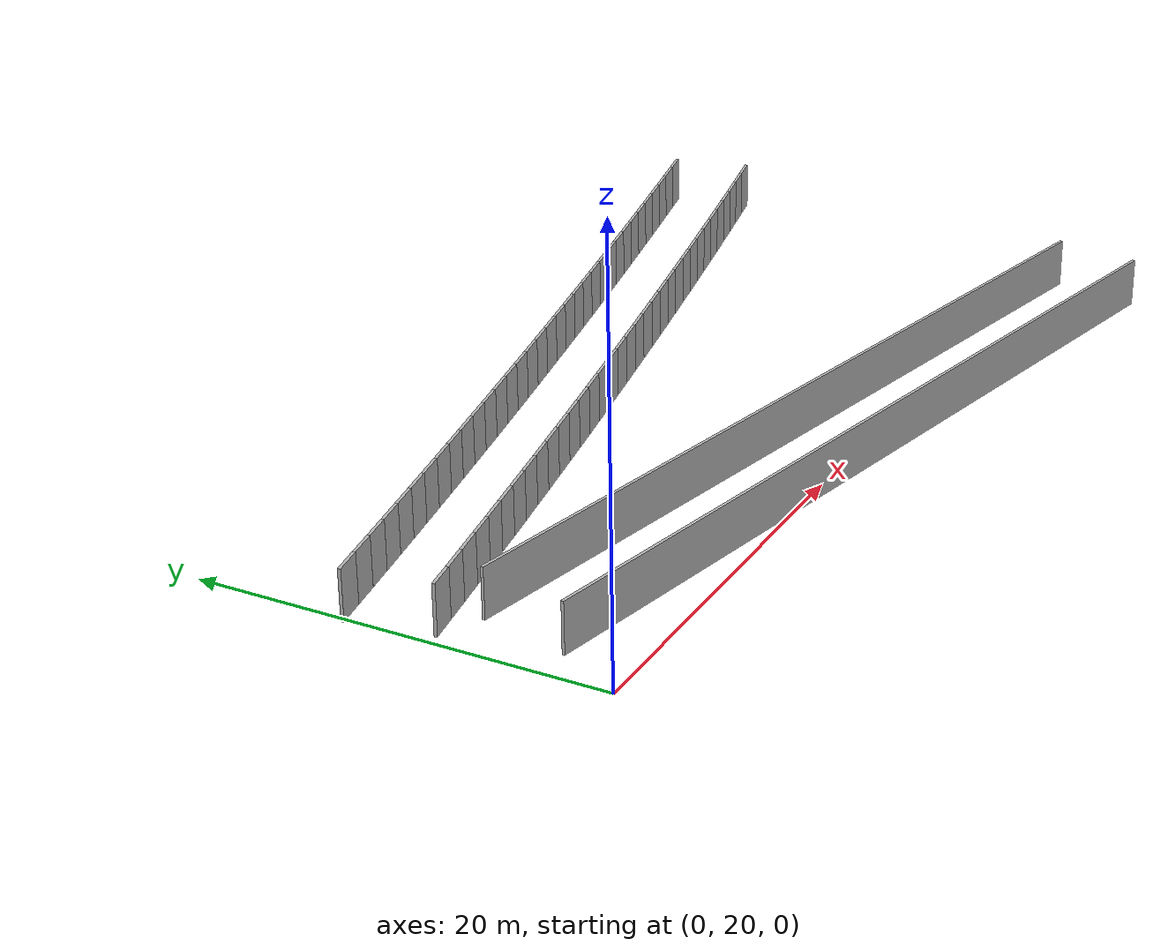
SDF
<?xml version="1.0" ?>
<sdf version="1.6">
  <model name="sps_2903">
    <pose frame="">0 0 0 0 -0 0</pose>
    <static>1</static>
    <self_collide>0</self_collide>
    <allow_auto_disable>0</allow_auto_disable>
    <link name="Wall3581">
      <kinematic>0</kinematic>
      <gravity>1</gravity>
      <self_collide>0</self_collide>
      <collision name="collision">
        <geometry>
          <box>
            <size>45.9351 0.15 2.5</size>
          </box>
        </geometry>
        <pose frame="">0 0 0 0 -0 0</pose>
      </collision>
      <visual name="visual">
        <geometry>
          <box>
            <size>45.9351 0.15 2.5</size>
          </box>
        </geometry>
        <pose frame="">0 0 0 0 -0 0</pose>
        <cast_shadows>1</cast_shadows>
        <transparency>0.0</transparency>
      </visual>
      <pose frame="">24.1661 18.5489 1.25 0 -0 2.93706</pose>
    </link>
    <link name="Wall3772">
      <kinematic>0</kinematic>
      <gravity>1</gravity>
      <self_collide>0</self_collide>
      <collision name="collision">
        <geometry>
          <box>
            <size>1.49666 0.15 2.5</size>
          </box>
        </geometry>
        <pose frame="">0 0 0 0 -0 0</pose>
      </collision>
      <visual name="visual">
        <geometry>
          <box>
            <size>1.49666 0.15 2.5</size>
          </box>
        </geometry>
        <pose frame="">0 0 0 0 -0 0</pose>
        <cast_shadows>1</cast_shadows>
        <transparency>0.0</transparency>
      </visual>
      <pose frame="">0.559348 32.7362 1.25 0 -0 0.170432</pose>
    </link>
    <link name="Wall3773">
      <kinematic>0</kinematic>
      <gravity>1</gravity>
      <self_collide>0</self_collide>
      <collision name="collision">
        <geometry>
          <box>
            <size>1.49651 0.15 2.5</size>
          </box>
        </geometry>
        <pose frame="">0 0 0 0 -0 0</pose>
      </collision>
      <visual name="visual">
        <geometry>
          <box>
            <size>1.49651 0.15 2.5</size>
          </box>
        </geometry>
        <pose frame="">0 0 0 0 -0 0</pose>
        <cast_shadows>1</cast_shadows>
        <transparency>0.0</transparency>
      </visual>
      <pose frame="">2.03405 32.9912 1.25 0 -0 0.172021</pose>
    </link>
    <link name="Wall3774">
      <kinematic>0</kinematic>
      <gravity>1</gravity>
      <self_collide>0</self_collide>
      <collision name="collision">
        <geometry>
          <box>
            <size>1.49651 0.15 2.5</size>
          </box>
        </geometry>
        <pose frame="">0 0 0 0 -0 0</pose>
      </collision>
      <visual name="visual">
        <geometry>
          <box>
            <size>1.49651 0.15 2.5</size>
          </box>
        </geometry>
        <pose frame="">0 0 0 0 -0 0</pose>
        <cast_shadows>1</cast_shadows>
        <transparency>0.0</transparency>
      </visual>
      <pose frame="">3.50826 33.2486 1.25 0 -0 0.173678</pose>
    </link>
    <link name="Wall3775">
      <kinematic>0</kinematic>
      <gravity>1</gravity>
      <self_collide>0</self_collide>
      <collision name="collision">
        <geometry>
          <box>
            <size>1.49647 0.15 2.5</size>
          </box>
        </geometry>
        <pose frame="">0 0 0 0 -0 0</pose>
      </collision>
      <visual name="visual">
        <geometry>
          <box>
            <size>1.49647 0.15 2.5</size>
          </box>
        </geometry>
        <pose frame="">0 0 0 0 -0 0</pose>
        <cast_shadows>1</cast_shadows>
        <transparency>0.0</transparency>
      </visual>
      <pose frame="">4.98205 33.5083 1.25 0 -0 0.175173</pose>
    </link>
    <link name="Wall3776">
      <kinematic>0</kinematic>
      <gravity>1</gravity>
      <self_collide>0</self_collide>
      <collision name="collision">
        <geometry>
          <box>
            <size>1.49635 0.15 2.5</size>
          </box>
        </geometry>
        <pose frame="">0 0 0 0 -0 0</pose>
      </collision>
      <visual name="visual">
        <geometry>
          <box>
            <size>1.49635 0.15 2.5</size>
          </box>
        </geometry>
        <pose frame="">0 0 0 0 -0 0</pose>
        <cast_shadows>1</cast_shadows>
        <transparency>0.0</transparency>
      </visual>
      <pose frame="">6.45534 33.7703 1.25 0 -0 0.176804</pose>
    </link>
    <link name="Wall3777">
      <kinematic>0</kinematic>
      <gravity>1</gravity>
      <self_collide>0</self_collide>
      <collision name="collision">
        <geometry>
          <box>
            <size>1.49654 0.15 2.5</size>
          </box>
        </geometry>
        <pose frame="">0 0 0 0 -0 0</pose>
      </collision>
      <visual name="visual">
        <geometry>
          <box>
            <size>1.49654 0.15 2.5</size>
          </box>
        </geometry>
        <pose frame="">0 0 0 0 -0 0</pose>
        <cast_shadows>1</cast_shadows>
        <transparency>0.0</transparency>
      </visual>
      <pose frame="">7.92824 34.0347 1.25 0 -0 0.178438</pose>
    </link>
    <link name="Wall3778">
      <kinematic>0</kinematic>
      <gravity>1</gravity>
      <self_collide>0</self_collide>
      <collision name="collision">
        <geometry>
          <box>
            <size>1.49657 0.15 2.5</size>
          </box>
        </geometry>
        <pose frame="">0 0 0 0 -0 0</pose>
      </collision>
      <visual name="visual">
        <geometry>
          <box>
            <size>1.49657 0.15 2.5</size>
          </box>
        </geometry>
        <pose frame="">0 0 0 0 -0 0</pose>
        <cast_shadows>1</cast_shadows>
        <transparency>0.0</transparency>
      </visual>
      <pose frame="">9.40084 34.3014 1.25 0 -0 0.179926</pose>
    </link>
    <link name="Wall3779">
      <kinematic>0</kinematic>
      <gravity>1</gravity>
      <self_collide>0</self_collide>
      <collision name="collision">
        <geometry>
          <box>
            <size>1.49658 0.15 2.5</size>
          </box>
        </geometry>
        <pose frame="">0 0 0 0 -0 0</pose>
      </collision>
      <visual name="visual">
        <geometry>
          <box>
            <size>1.49658 0.15 2.5</size>
          </box>
        </geometry>
        <pose frame="">0 0 0 0 -0 0</pose>
        <cast_shadows>1</cast_shadows>
        <transparency>0.0</transparency>
      </visual>
      <pose frame="">10.873 34.5704 1.25 0 -0 0.181542</pose>
    </link>
    <link name="Wall3780">
      <kinematic>0</kinematic>
      <gravity>1</gravity>
      <self_collide>0</self_collide>
      <collision name="collision">
        <geometry>
          <box>
            <size>1.49665 0.15 2.5</size>
          </box>
        </geometry>
        <pose frame="">0 0 0 0 -0 0</pose>
      </collision>
      <visual name="visual">
        <geometry>
          <box>
            <size>1.49665 0.15 2.5</size>
          </box>
        </geometry>
        <pose frame="">0 0 0 0 -0 0</pose>
        <cast_shadows>1</cast_shadows>
        <transparency>0.0</transparency>
      </visual>
      <pose frame="">12.3448 34.8418 1.25 0 -0 0.183151</pose>
    </link>
    <link name="Wall3781">
      <kinematic>0</kinematic>
      <gravity>1</gravity>
      <self_collide>0</self_collide>
      <collision name="collision">
        <geometry>
          <box>
            <size>1.49649 0.15 2.5</size>
          </box>
        </geometry>
        <pose frame="">0 0 0 0 -0 0</pose>
      </collision>
      <visual name="visual">
        <geometry>
          <box>
            <size>1.49649 0.15 2.5</size>
          </box>
        </geometry>
        <pose frame="">0 0 0 0 -0 0</pose>
        <cast_shadows>1</cast_shadows>
        <transparency>0.0</transparency>
      </visual>
      <pose frame="">13.8162 35.1156 1.25 0 -0 0.184789</pose>
    </link>
    <link name="Wall3782">
      <kinematic>0</kinematic>
      <gravity>1</gravity>
      <self_collide>0</self_collide>
      <collision name="collision">
        <geometry>
          <box>
            <size>1.49648 0.15 2.5</size>
          </box>
        </geometry>
        <pose frame="">0 0 0 0 -0 0</pose>
      </collision>
      <visual name="visual">
        <geometry>
          <box>
            <size>1.49648 0.15 2.5</size>
          </box>
        </geometry>
        <pose frame="">0 0 0 0 -0 0</pose>
        <cast_shadows>1</cast_shadows>
        <transparency>0.0</transparency>
      </visual>
      <pose frame="">15.2869 35.3917 1.25 0 -0 0.186325</pose>
    </link>
    <link name="Wall3783">
      <kinematic>0</kinematic>
      <gravity>1</gravity>
      <self_collide>0</self_collide>
      <collision name="collision">
        <geometry>
          <box>
            <size>1.49671 0.15 2.5</size>
          </box>
        </geometry>
        <pose frame="">0 0 0 0 -0 0</pose>
      </collision>
      <visual name="visual">
        <geometry>
          <box>
            <size>1.49671 0.15 2.5</size>
          </box>
        </geometry>
        <pose frame="">0 0 0 0 -0 0</pose>
        <cast_shadows>1</cast_shadows>
        <transparency>0.0</transparency>
      </visual>
      <pose frame="">16.7574 35.67 1.25 0 -0 0.18779</pose>
    </link>
    <link name="Wall3784">
      <kinematic>0</kinematic>
      <gravity>1</gravity>
      <self_collide>0</self_collide>
      <collision name="collision">
        <geometry>
          <box>
            <size>1.49638 0.15 2.5</size>
          </box>
        </geometry>
        <pose frame="">0 0 0 0 -0 0</pose>
      </collision>
      <visual name="visual">
        <geometry>
          <box>
            <size>1.49638 0.15 2.5</size>
          </box>
        </geometry>
        <pose frame="">0 0 0 0 -0 0</pose>
        <cast_shadows>1</cast_shadows>
        <transparency>0.0</transparency>
      </visual>
      <pose frame="">18.2274 35.9506 1.25 0 -0 0.189452</pose>
    </link>
    <link name="Wall3785">
      <kinematic>0</kinematic>
      <gravity>1</gravity>
      <self_collide>0</self_collide>
      <collision name="collision">
        <geometry>
          <box>
            <size>1.49665 0.15 2.5</size>
          </box>
        </geometry>
        <pose frame="">0 0 0 0 -0 0</pose>
      </collision>
      <visual name="visual">
        <geometry>
          <box>
            <size>1.49665 0.15 2.5</size>
          </box>
        </geometry>
        <pose frame="">0 0 0 0 -0 0</pose>
        <cast_shadows>1</cast_shadows>
        <transparency>0.0</transparency>
      </visual>
      <pose frame="">19.697 36.2336 1.25 0 -0 0.191037</pose>
    </link>
    <link name="Wall3786">
      <kinematic>0</kinematic>
      <gravity>1</gravity>
      <self_collide>0</self_collide>
      <collision name="collision">
        <geometry>
          <box>
            <size>1.49652 0.15 2.5</size>
          </box>
        </geometry>
        <pose frame="">0 0 0 0 -0 0</pose>
      </collision>
      <visual name="visual">
        <geometry>
          <box>
            <size>1.49652 0.15 2.5</size>
          </box>
        </geometry>
        <pose frame="">0 0 0 0 -0 0</pose>
        <cast_shadows>1</cast_shadows>
        <transparency>0.0</transparency>
      </visual>
      <pose frame="">21.1661 36.519 1.25 0 -0 0.192716</pose>
    </link>
    <link name="Wall3787">
      <kinematic>0</kinematic>
      <gravity>1</gravity>
      <self_collide>0</self_collide>
      <collision name="collision">
        <geometry>
          <box>
            <size>1.49651 0.15 2.5</size>
          </box>
        </geometry>
        <pose frame="">0 0 0 0 -0 0</pose>
      </collision>
      <visual name="visual">
        <geometry>
          <box>
            <size>1.49651 0.15 2.5</size>
          </box>
        </geometry>
        <pose frame="">0 0 0 0 -0 0</pose>
        <cast_shadows>1</cast_shadows>
        <transparency>0.0</transparency>
      </visual>
      <pose frame="">22.6347 36.8067 1.25 0 -0 0.194172</pose>
    </link>
    <link name="Wall3788">
      <kinematic>0</kinematic>
      <gravity>1</gravity>
      <self_collide>0</self_collide>
      <collision name="collision">
        <geometry>
          <box>
            <size>1.49638 0.15 2.5</size>
          </box>
        </geometry>
        <pose frame="">0 0 0 0 -0 0</pose>
      </collision>
      <visual name="visual">
        <geometry>
          <box>
            <size>1.49638 0.15 2.5</size>
          </box>
        </geometry>
        <pose frame="">0 0 0 0 -0 0</pose>
        <cast_shadows>1</cast_shadows>
        <transparency>0.0</transparency>
      </visual>
      <pose frame="">24.1027 37.0967 1.25 0 -0 0.195852</pose>
    </link>
    <link name="Wall3789">
      <kinematic>0</kinematic>
      <gravity>1</gravity>
      <self_collide>0</self_collide>
      <collision name="collision">
        <geometry>
          <box>
            <size>1.49646 0.15 2.5</size>
          </box>
        </geometry>
        <pose frame="">0 0 0 0 -0 0</pose>
      </collision>
      <visual name="visual">
        <geometry>
          <box>
            <size>1.49646 0.15 2.5</size>
          </box>
        </geometry>
        <pose frame="">0 0 0 0 -0 0</pose>
        <cast_shadows>1</cast_shadows>
        <transparency>0.0</transparency>
      </visual>
      <pose frame="">25.5703 37.389 1.25 0 -0 0.19738</pose>
    </link>
    <link name="Wall3790">
      <kinematic>0</kinematic>
      <gravity>1</gravity>
      <self_collide>0</self_collide>
      <collision name="collision">
        <geometry>
          <box>
            <size>1.49656 0.15 2.5</size>
          </box>
        </geometry>
        <pose frame="">0 0 0 0 -0 0</pose>
      </collision>
      <visual name="visual">
        <geometry>
          <box>
            <size>1.49656 0.15 2.5</size>
          </box>
        </geometry>
        <pose frame="">0 0 0 0 -0 0</pose>
        <cast_shadows>1</cast_shadows>
        <transparency>0.0</transparency>
      </visual>
      <pose frame="">27.0376 37.6836 1.25 0 -0 0.198947</pose>
    </link>
    <link name="Wall3791">
      <kinematic>0</kinematic>
      <gravity>1</gravity>
      <self_collide>0</self_collide>
      <collision name="collision">
        <geometry>
          <box>
            <size>1.49652 0.15 2.5</size>
          </box>
        </geometry>
        <pose frame="">0 0 0 0 -0 0</pose>
      </collision>
      <visual name="visual">
        <geometry>
          <box>
            <size>1.49652 0.15 2.5</size>
          </box>
        </geometry>
        <pose frame="">0 0 0 0 -0 0</pose>
        <cast_shadows>1</cast_shadows>
        <transparency>0.0</transparency>
      </visual>
      <pose frame="">28.5044 37.9805 1.25 0 -0 0.200451</pose>
    </link>
    <link name="Wall3792">
      <kinematic>0</kinematic>
      <gravity>1</gravity>
      <self_collide>0</self_collide>
      <collision name="collision">
        <geometry>
          <box>
            <size>1.4965 0.15 2.5</size>
          </box>
        </geometry>
        <pose frame="">0 0 0 0 -0 0</pose>
      </collision>
      <visual name="visual">
        <geometry>
          <box>
            <size>1.4965 0.15 2.5</size>
          </box>
        </geometry>
        <pose frame="">0 0 0 0 -0 0</pose>
        <cast_shadows>1</cast_shadows>
        <transparency>0.0</transparency>
      </visual>
      <pose frame="">29.9706 38.2798 1.25 0 -0 0.202243</pose>
    </link>
    <link name="Wall3793">
      <kinematic>0</kinematic>
      <gravity>1</gravity>
      <self_collide>0</self_collide>
      <collision name="collision">
        <geometry>
          <box>
            <size>1.49659 0.15 2.5</size>
          </box>
        </geometry>
        <pose frame="">0 0 0 0 -0 0</pose>
      </collision>
      <visual name="visual">
        <geometry>
          <box>
            <size>1.49659 0.15 2.5</size>
          </box>
        </geometry>
        <pose frame="">0 0 0 0 -0 0</pose>
        <cast_shadows>1</cast_shadows>
        <transparency>0.0</transparency>
      </visual>
      <pose frame="">31.4365 38.5815 1.25 0 -0 0.20373</pose>
    </link>
    <link name="Wall3794">
      <kinematic>0</kinematic>
      <gravity>1</gravity>
      <self_collide>0</self_collide>
      <collision name="collision">
        <geometry>
          <box>
            <size>1.49663 0.15 2.5</size>
          </box>
        </geometry>
        <pose frame="">0 0 0 0 -0 0</pose>
      </collision>
      <visual name="visual">
        <geometry>
          <box>
            <size>1.49663 0.15 2.5</size>
          </box>
        </geometry>
        <pose frame="">0 0 0 0 -0 0</pose>
        <cast_shadows>1</cast_shadows>
        <transparency>0.0</transparency>
      </visual>
      <pose frame="">32.9019 38.8854 1.25 0 -0 0.205266</pose>
    </link>
    <link name="Wall3795">
      <kinematic>0</kinematic>
      <gravity>1</gravity>
      <self_collide>0</self_collide>
      <collision name="collision">
        <geometry>
          <box>
            <size>1.49654 0.15 2.5</size>
          </box>
        </geometry>
        <pose frame="">0 0 0 0 -0 0</pose>
      </collision>
      <visual name="visual">
        <geometry>
          <box>
            <size>1.49654 0.15 2.5</size>
          </box>
        </geometry>
        <pose frame="">0 0 0 0 -0 0</pose>
        <cast_shadows>1</cast_shadows>
        <transparency>0.0</transparency>
      </visual>
      <pose frame="">34.3668 39.1917 1.25 0 -0 0.206986</pose>
    </link>
    <link name="Wall3796">
      <kinematic>0</kinematic>
      <gravity>1</gravity>
      <self_collide>0</self_collide>
      <collision name="collision">
        <geometry>
          <box>
            <size>1.49655 0.15 2.5</size>
          </box>
        </geometry>
        <pose frame="">0 0 0 0 -0 0</pose>
      </collision>
      <visual name="visual">
        <geometry>
          <box>
            <size>1.49655 0.15 2.5</size>
          </box>
        </geometry>
        <pose frame="">0 0 0 0 -0 0</pose>
        <cast_shadows>1</cast_shadows>
        <transparency>0.0</transparency>
      </visual>
      <pose frame="">35.8312 39.5003 1.25 0 -0 0.208402</pose>
    </link>
    <link name="Wall3797">
      <kinematic>0</kinematic>
      <gravity>1</gravity>
      <self_collide>0</self_collide>
      <collision name="collision">
        <geometry>
          <box>
            <size>1.49673 0.15 2.5</size>
          </box>
        </geometry>
        <pose frame="">0 0 0 0 -0 0</pose>
      </collision>
      <visual name="visual">
        <geometry>
          <box>
            <size>1.49673 0.15 2.5</size>
          </box>
        </geometry>
        <pose frame="">0 0 0 0 -0 0</pose>
        <cast_shadows>1</cast_shadows>
        <transparency>0.0</transparency>
      </visual>
      <pose frame="">37.2952 39.8112 1.25 0 -0 0.210128</pose>
    </link>
    <link name="Wall3798">
      <kinematic>0</kinematic>
      <gravity>1</gravity>
      <self_collide>0</self_collide>
      <collision name="collision">
        <geometry>
          <box>
            <size>1.49641 0.15 2.5</size>
          </box>
        </geometry>
        <pose frame="">0 0 0 0 -0 0</pose>
      </collision>
      <visual name="visual">
        <geometry>
          <box>
            <size>1.49641 0.15 2.5</size>
          </box>
        </geometry>
        <pose frame="">0 0 0 0 -0 0</pose>
        <cast_shadows>1</cast_shadows>
        <transparency>0.0</transparency>
      </visual>
      <pose frame="">38.7586 40.1245 1.25 0 -0 0.211674</pose>
    </link>
    <link name="Wall3799">
      <kinematic>0</kinematic>
      <gravity>1</gravity>
      <self_collide>0</self_collide>
      <collision name="collision">
        <geometry>
          <box>
            <size>1.49664 0.15 2.5</size>
          </box>
        </geometry>
        <pose frame="">0 0 0 0 -0 0</pose>
      </collision>
      <visual name="visual">
        <geometry>
          <box>
            <size>1.49664 0.15 2.5</size>
          </box>
        </geometry>
        <pose frame="">0 0 0 0 -0 0</pose>
        <cast_shadows>1</cast_shadows>
        <transparency>0.0</transparency>
      </visual>
      <pose frame="">40.2215 40.44 1.25 0 -0 0.213144</pose>
    </link>
    <link name="Wall3800">
      <kinematic>0</kinematic>
      <gravity>1</gravity>
      <self_collide>0</self_collide>
      <collision name="collision">
        <geometry>
          <box>
            <size>1.49648 0.15 2.5</size>
          </box>
        </geometry>
        <pose frame="">0 0 0 0 -0 0</pose>
      </collision>
      <visual name="visual">
        <geometry>
          <box>
            <size>1.49648 0.15 2.5</size>
          </box>
        </geometry>
        <pose frame="">0 0 0 0 -0 0</pose>
        <cast_shadows>1</cast_shadows>
        <transparency>0.0</transparency>
      </visual>
      <pose frame="">41.6839 40.7579 1.25 0 -0 0.214962</pose>
    </link>
    <link name="Wall3801">
      <kinematic>0</kinematic>
      <gravity>1</gravity>
      <self_collide>0</self_collide>
      <collision name="collision">
        <geometry>
          <box>
            <size>1.49643 0.15 2.5</size>
          </box>
        </geometry>
        <pose frame="">0 0 0 0 -0 0</pose>
      </collision>
      <visual name="visual">
        <geometry>
          <box>
            <size>1.49643 0.15 2.5</size>
          </box>
        </geometry>
        <pose frame="">0 0 0 0 -0 0</pose>
        <cast_shadows>1</cast_shadows>
        <transparency>0.0</transparency>
      </visual>
      <pose frame="">43.1457 41.0781 1.25 0 -0 0.216346</pose>
    </link>
    <link name="Wall3802">
      <kinematic>0</kinematic>
      <gravity>1</gravity>
      <self_collide>0</self_collide>
      <collision name="collision">
        <geometry>
          <box>
            <size>1.49663 0.15 2.5</size>
          </box>
        </geometry>
        <pose frame="">0 0 0 0 -0 0</pose>
      </collision>
      <visual name="visual">
        <geometry>
          <box>
            <size>1.49663 0.15 2.5</size>
          </box>
        </geometry>
        <pose frame="">0 0 0 0 -0 0</pose>
        <cast_shadows>1</cast_shadows>
        <transparency>0.0</transparency>
      </visual>
      <pose frame="">44.607 41.4005 1.25 0 -0 0.217904</pose>
    </link>
    <link name="Wall3803">
      <kinematic>0</kinematic>
      <gravity>1</gravity>
      <self_collide>0</self_collide>
      <collision name="collision">
        <geometry>
          <box>
            <size>1.49647 0.15 2.5</size>
          </box>
        </geometry>
        <pose frame="">0 0 0 0 -0 0</pose>
      </collision>
      <visual name="visual">
        <geometry>
          <box>
            <size>1.49647 0.15 2.5</size>
          </box>
        </geometry>
        <pose frame="">0 0 0 0 -0 0</pose>
        <cast_shadows>1</cast_shadows>
        <transparency>0.0</transparency>
      </visual>
      <pose frame="">46.068 41.7252 1.25 0 -0 0.219474</pose>
    </link>
    <link name="Wall3804">
      <kinematic>0</kinematic>
      <gravity>1</gravity>
      <self_collide>0</self_collide>
      <collision name="collision">
        <geometry>
          <box>
            <size>1.49651 0.15 2.5</size>
          </box>
        </geometry>
        <pose frame="">0 0 0 0 -0 0</pose>
      </collision>
      <visual name="visual">
        <geometry>
          <box>
            <size>1.49651 0.15 2.5</size>
          </box>
        </geometry>
        <pose frame="">0 0 0 0 -0 0</pose>
        <cast_shadows>1</cast_shadows>
        <transparency>0.0</transparency>
      </visual>
      <pose frame="">47.5283 42.0523 1.25 0 -0 0.221266</pose>
    </link>
    <link name="Wall3805">
      <kinematic>0</kinematic>
      <gravity>1</gravity>
      <self_collide>0</self_collide>
      <collision name="collision">
        <geometry>
          <box>
            <size>1.49638 0.15 2.5</size>
          </box>
        </geometry>
        <pose frame="">0 0 0 0 -0 0</pose>
      </collision>
      <visual name="visual">
        <geometry>
          <box>
            <size>1.49638 0.15 2.5</size>
          </box>
        </geometry>
        <pose frame="">0 0 0 0 -0 0</pose>
        <cast_shadows>1</cast_shadows>
        <transparency>0.0</transparency>
      </visual>
      <pose frame="">48.988 42.3818 1.25 0 -0 0.222748</pose>
    </link>
    <link name="Wall7356">
      <kinematic>0</kinematic>
      <gravity>1</gravity>
      <self_collide>0</self_collide>
      <collision name="collision">
        <geometry>
          <box>
            <size>45.8889 0.15 2.5</size>
          </box>
        </geometry>
        <pose frame="">0 0 0 0 -0 0</pose>
      </collision>
      <visual name="visual">
        <geometry>
          <box>
            <size>45.8889 0.15 2.5</size>
          </box>
        </geometry>
        <pose frame="">0 0 0 0 -0 0</pose>
        <cast_shadows>1</cast_shadows>
        <transparency>0.0</transparency>
      </visual>
      <pose frame="">25.0788 22.8531 1.25 0 -0 2.93706</pose>
    </link>
    <link name="Wall7547">
      <kinematic>0</kinematic>
      <gravity>1</gravity>
      <self_collide>0</self_collide>
      <collision name="collision">
        <geometry>
          <box>
            <size>1.5032 0.15 2.5</size>
          </box>
        </geometry>
        <pose frame="">0 0 0 0 -0 0</pose>
      </collision>
      <visual name="visual">
        <geometry>
          <box>
            <size>1.5032 0.15 2.5</size>
          </box>
        </geometry>
        <pose frame="">0 0 0 0 -0 0</pose>
        <cast_shadows>1</cast_shadows>
        <transparency>0.0</transparency>
      </visual>
      <pose frame="">1.26455 28.6563 1.25 0 -0 0.170342</pose>
    </link>
    <link name="Wall7548">
      <kinematic>0</kinematic>
      <gravity>1</gravity>
      <self_collide>0</self_collide>
      <collision name="collision">
        <geometry>
          <box>
            <size>1.50298 0.15 2.5</size>
          </box>
        </geometry>
        <pose frame="">0 0 0 0 -0 0</pose>
      </collision>
      <visual name="visual">
        <geometry>
          <box>
            <size>1.50298 0.15 2.5</size>
          </box>
        </geometry>
        <pose frame="">0 0 0 0 -0 0</pose>
        <cast_shadows>1</cast_shadows>
        <transparency>0.0</transparency>
      </visual>
      <pose frame="">2.74566 28.9124 1.25 0 -0 0.172099</pose>
    </link>
    <link name="Wall7549">
      <kinematic>0</kinematic>
      <gravity>1</gravity>
      <self_collide>0</self_collide>
      <collision name="collision">
        <geometry>
          <box>
            <size>1.50317 0.15 2.5</size>
          </box>
        </geometry>
        <pose frame="">0 0 0 0 -0 0</pose>
      </collision>
      <visual name="visual">
        <geometry>
          <box>
            <size>1.50317 0.15 2.5</size>
          </box>
        </geometry>
        <pose frame="">0 0 0 0 -0 0</pose>
        <cast_shadows>1</cast_shadows>
        <transparency>0.0</transparency>
      </visual>
      <pose frame="">4.22634 29.1709 1.25 0 -0 0.17356</pose>
    </link>
    <link name="Wall7550">
      <kinematic>0</kinematic>
      <gravity>1</gravity>
      <self_collide>0</self_collide>
      <collision name="collision">
        <geometry>
          <box>
            <size>1.50309 0.15 2.5</size>
          </box>
        </geometry>
        <pose frame="">0 0 0 0 -0 0</pose>
      </collision>
      <visual name="visual">
        <geometry>
          <box>
            <size>1.50309 0.15 2.5</size>
          </box>
        </geometry>
        <pose frame="">0 0 0 0 -0 0</pose>
        <cast_shadows>1</cast_shadows>
        <transparency>0.0</transparency>
      </visual>
      <pose frame="">5.70666 29.4318 1.25 0 -0 0.175343</pose>
    </link>
    <link name="Wall7551">
      <kinematic>0</kinematic>
      <gravity>1</gravity>
      <self_collide>0</self_collide>
      <collision name="collision">
        <geometry>
          <box>
            <size>1.50299 0.15 2.5</size>
          </box>
        </geometry>
        <pose frame="">0 0 0 0 -0 0</pose>
      </collision>
      <visual name="visual">
        <geometry>
          <box>
            <size>1.50299 0.15 2.5</size>
          </box>
        </geometry>
        <pose frame="">0 0 0 0 -0 0</pose>
        <cast_shadows>1</cast_shadows>
        <transparency>0.0</transparency>
      </visual>
      <pose frame="">7.18645 29.6951 1.25 0 -0 0.176839</pose>
    </link>
    <link name="Wall7552">
      <kinematic>0</kinematic>
      <gravity>1</gravity>
      <self_collide>0</self_collide>
      <collision name="collision">
        <geometry>
          <box>
            <size>1.50308 0.15 2.5</size>
          </box>
        </geometry>
        <pose frame="">0 0 0 0 -0 0</pose>
      </collision>
      <visual name="visual">
        <geometry>
          <box>
            <size>1.50308 0.15 2.5</size>
          </box>
        </geometry>
        <pose frame="">0 0 0 0 -0 0</pose>
        <cast_shadows>1</cast_shadows>
        <transparency>0.0</transparency>
      </visual>
      <pose frame="">8.66585 29.9606 1.25 0 -0 0.178314</pose>
    </link>
    <link name="Wall7553">
      <kinematic>0</kinematic>
      <gravity>1</gravity>
      <self_collide>0</self_collide>
      <collision name="collision">
        <geometry>
          <box>
            <size>1.50302 0.15 2.5</size>
          </box>
        </geometry>
        <pose frame="">0 0 0 0 -0 0</pose>
      </collision>
      <visual name="visual">
        <geometry>
          <box>
            <size>1.50302 0.15 2.5</size>
          </box>
        </geometry>
        <pose frame="">0 0 0 0 -0 0</pose>
        <cast_shadows>1</cast_shadows>
        <transparency>0.0</transparency>
      </visual>
      <pose frame="">10.1449 30.2284 1.25 0 -0 0.17993</pose>
    </link>
    <link name="Wall7554">
      <kinematic>0</kinematic>
      <gravity>1</gravity>
      <self_collide>0</self_collide>
      <collision name="collision">
        <geometry>
          <box>
            <size>1.50334 0.15 2.5</size>
          </box>
        </geometry>
        <pose frame="">0 0 0 0 -0 0</pose>
      </collision>
      <visual name="visual">
        <geometry>
          <box>
            <size>1.50334 0.15 2.5</size>
          </box>
        </geometry>
        <pose frame="">0 0 0 0 -0 0</pose>
        <cast_shadows>1</cast_shadows>
        <transparency>0.0</transparency>
      </visual>
      <pose frame="">11.6236 30.4986 1.25 0 -0 0.181542</pose>
    </link>
    <link name="Wall7555">
      <kinematic>0</kinematic>
      <gravity>1</gravity>
      <self_collide>0</self_collide>
      <collision name="collision">
        <geometry>
          <box>
            <size>1.50293 0.15 2.5</size>
          </box>
        </geometry>
        <pose frame="">0 0 0 0 -0 0</pose>
      </collision>
      <visual name="visual">
        <geometry>
          <box>
            <size>1.50293 0.15 2.5</size>
          </box>
        </geometry>
        <pose frame="">0 0 0 0 -0 0</pose>
        <cast_shadows>1</cast_shadows>
        <transparency>0.0</transparency>
      </visual>
      <pose frame="">13.1018 30.7712 1.25 0 -0 0.183203</pose>
    </link>
    <link name="Wall7556">
      <kinematic>0</kinematic>
      <gravity>1</gravity>
      <self_collide>0</self_collide>
      <collision name="collision">
        <geometry>
          <box>
            <size>1.50298 0.15 2.5</size>
          </box>
        </geometry>
        <pose frame="">0 0 0 0 -0 0</pose>
      </collision>
      <visual name="visual">
        <geometry>
          <box>
            <size>1.50298 0.15 2.5</size>
          </box>
        </geometry>
        <pose frame="">0 0 0 0 -0 0</pose>
        <cast_shadows>1</cast_shadows>
        <transparency>0.0</transparency>
      </visual>
      <pose frame="">14.5794 31.0461 1.25 0 -0 0.184684</pose>
    </link>
    <link name="Wall7557">
      <kinematic>0</kinematic>
      <gravity>1</gravity>
      <self_collide>0</self_collide>
      <collision name="collision">
        <geometry>
          <box>
            <size>1.503 0.15 2.5</size>
          </box>
        </geometry>
        <pose frame="">0 0 0 0 -0 0</pose>
      </collision>
      <visual name="visual">
        <geometry>
          <box>
            <size>1.503 0.15 2.5</size>
          </box>
        </geometry>
        <pose frame="">0 0 0 0 -0 0</pose>
        <cast_shadows>1</cast_shadows>
        <transparency>0.0</transparency>
      </visual>
      <pose frame="">16.0566 31.3233 1.25 0 -0 0.186293</pose>
    </link>
    <link name="Wall7558">
      <kinematic>0</kinematic>
      <gravity>1</gravity>
      <self_collide>0</self_collide>
      <collision name="collision">
        <geometry>
          <box>
            <size>1.50327 0.15 2.5</size>
          </box>
        </geometry>
        <pose frame="">0 0 0 0 -0 0</pose>
      </collision>
      <visual name="visual">
        <geometry>
          <box>
            <size>1.50327 0.15 2.5</size>
          </box>
        </geometry>
        <pose frame="">0 0 0 0 -0 0</pose>
        <cast_shadows>1</cast_shadows>
        <transparency>0.0</transparency>
      </visual>
      <pose frame="">17.5335 31.6029 1.25 0 -0 0.187912</pose>
    </link>
    <link name="Wall7559">
      <kinematic>0</kinematic>
      <gravity>1</gravity>
      <self_collide>0</self_collide>
      <collision name="collision">
        <geometry>
          <box>
            <size>1.50312 0.15 2.5</size>
          </box>
        </geometry>
        <pose frame="">0 0 0 0 -0 0</pose>
      </collision>
      <visual name="visual">
        <geometry>
          <box>
            <size>1.50312 0.15 2.5</size>
          </box>
        </geometry>
        <pose frame="">0 0 0 0 -0 0</pose>
        <cast_shadows>1</cast_shadows>
        <transparency>0.0</transparency>
      </visual>
      <pose frame="">19.01 31.8849 1.25 0 -0 0.189544</pose>
    </link>
    <link name="Wall7560">
      <kinematic>0</kinematic>
      <gravity>1</gravity>
      <self_collide>0</self_collide>
      <collision name="collision">
        <geometry>
          <box>
            <size>1.50311 0.15 2.5</size>
          </box>
        </geometry>
        <pose frame="">0 0 0 0 -0 0</pose>
      </collision>
      <visual name="visual">
        <geometry>
          <box>
            <size>1.50311 0.15 2.5</size>
          </box>
        </geometry>
        <pose frame="">0 0 0 0 -0 0</pose>
        <cast_shadows>1</cast_shadows>
        <transparency>0.0</transparency>
      </visual>
      <pose frame="">20.486 32.1692 1.25 0 -0 0.191033</pose>
    </link>
    <link name="Wall7561">
      <kinematic>0</kinematic>
      <gravity>1</gravity>
      <self_collide>0</self_collide>
      <collision name="collision">
        <geometry>
          <box>
            <size>1.50303 0.15 2.5</size>
          </box>
        </geometry>
        <pose frame="">0 0 0 0 -0 0</pose>
      </collision>
      <visual name="visual">
        <geometry>
          <box>
            <size>1.50303 0.15 2.5</size>
          </box>
        </geometry>
        <pose frame="">0 0 0 0 -0 0</pose>
        <cast_shadows>1</cast_shadows>
        <transparency>0.0</transparency>
      </visual>
      <pose frame="">21.9614 32.4558 1.25 0 -0 0.192657</pose>
    </link>
    <link name="Wall7562">
      <kinematic>0</kinematic>
      <gravity>1</gravity>
      <self_collide>0</self_collide>
      <collision name="collision">
        <geometry>
          <box>
            <size>1.50303 0.15 2.5</size>
          </box>
        </geometry>
        <pose frame="">0 0 0 0 -0 0</pose>
      </collision>
      <visual name="visual">
        <geometry>
          <box>
            <size>1.50303 0.15 2.5</size>
          </box>
        </geometry>
        <pose frame="">0 0 0 0 -0 0</pose>
        <cast_shadows>1</cast_shadows>
        <transparency>0.0</transparency>
      </visual>
      <pose frame="">23.4365 32.7447 1.25 0 -0 0.194146</pose>
    </link>
    <link name="Wall7563">
      <kinematic>0</kinematic>
      <gravity>1</gravity>
      <self_collide>0</self_collide>
      <collision name="collision">
        <geometry>
          <box>
            <size>1.50318 0.15 2.5</size>
          </box>
        </geometry>
        <pose frame="">0 0 0 0 -0 0</pose>
      </collision>
      <visual name="visual">
        <geometry>
          <box>
            <size>1.50318 0.15 2.5</size>
          </box>
        </geometry>
        <pose frame="">0 0 0 0 -0 0</pose>
        <cast_shadows>1</cast_shadows>
        <transparency>0.0</transparency>
      </visual>
      <pose frame="">24.9111 33.036 1.25 0 -0 0.195906</pose>
    </link>
    <link name="Wall7564">
      <kinematic>0</kinematic>
      <gravity>1</gravity>
      <self_collide>0</self_collide>
      <collision name="collision">
        <geometry>
          <box>
            <size>1.50315 0.15 2.5</size>
          </box>
        </geometry>
        <pose frame="">0 0 0 0 -0 0</pose>
      </collision>
      <visual name="visual">
        <geometry>
          <box>
            <size>1.50315 0.15 2.5</size>
          </box>
        </geometry>
        <pose frame="">0 0 0 0 -0 0</pose>
        <cast_shadows>1</cast_shadows>
        <transparency>0.0</transparency>
      </visual>
      <pose frame="">26.3853 33.3296 1.25 0 -0 0.197276</pose>
    </link>
    <link name="Wall7565">
      <kinematic>0</kinematic>
      <gravity>1</gravity>
      <self_collide>0</self_collide>
      <collision name="collision">
        <geometry>
          <box>
            <size>1.50302 0.15 2.5</size>
          </box>
        </geometry>
        <pose frame="">0 0 0 0 -0 0</pose>
      </collision>
      <visual name="visual">
        <geometry>
          <box>
            <size>1.50302 0.15 2.5</size>
          </box>
        </geometry>
        <pose frame="">0 0 0 0 -0 0</pose>
        <cast_shadows>1</cast_shadows>
        <transparency>0.0</transparency>
      </visual>
      <pose frame="">27.859 33.6254 1.25 0 -0 0.198909</pose>
    </link>
    <link name="Wall7566">
      <kinematic>0</kinematic>
      <gravity>1</gravity>
      <self_collide>0</self_collide>
      <collision name="collision">
        <geometry>
          <box>
            <size>1.50309 0.15 2.5</size>
          </box>
        </geometry>
        <pose frame="">0 0 0 0 -0 0</pose>
      </collision>
      <visual name="visual">
        <geometry>
          <box>
            <size>1.50309 0.15 2.5</size>
          </box>
        </geometry>
        <pose frame="">0 0 0 0 -0 0</pose>
        <cast_shadows>1</cast_shadows>
        <transparency>0.0</transparency>
      </visual>
      <pose frame="">29.3321 33.9236 1.25 0 -0 0.200557</pose>
    </link>
    <link name="Wall7567">
      <kinematic>0</kinematic>
      <gravity>1</gravity>
      <self_collide>0</self_collide>
      <collision name="collision">
        <geometry>
          <box>
            <size>1.50302 0.15 2.5</size>
          </box>
        </geometry>
        <pose frame="">0 0 0 0 -0 0</pose>
      </collision>
      <visual name="visual">
        <geometry>
          <box>
            <size>1.50302 0.15 2.5</size>
          </box>
        </geometry>
        <pose frame="">0 0 0 0 -0 0</pose>
        <cast_shadows>1</cast_shadows>
        <transparency>0.0</transparency>
      </visual>
      <pose frame="">30.8048 34.2242 1.25 0 -0 0.202142</pose>
    </link>
    <link name="Wall7568">
      <kinematic>0</kinematic>
      <gravity>1</gravity>
      <self_collide>0</self_collide>
      <collision name="collision">
        <geometry>
          <box>
            <size>1.50315 0.15 2.5</size>
          </box>
        </geometry>
        <pose frame="">0 0 0 0 -0 0</pose>
      </collision>
      <visual name="visual">
        <geometry>
          <box>
            <size>1.50315 0.15 2.5</size>
          </box>
        </geometry>
        <pose frame="">0 0 0 0 -0 0</pose>
        <cast_shadows>1</cast_shadows>
        <transparency>0.0</transparency>
      </visual>
      <pose frame="">32.2771 34.5272 1.25 0 -0 0.203782</pose>
    </link>
    <link name="Wall7569">
      <kinematic>0</kinematic>
      <gravity>1</gravity>
      <self_collide>0</self_collide>
      <collision name="collision">
        <geometry>
          <box>
            <size>1.50317 0.15 2.5</size>
          </box>
        </geometry>
        <pose frame="">0 0 0 0 -0 0</pose>
      </collision>
      <visual name="visual">
        <geometry>
          <box>
            <size>1.50317 0.15 2.5</size>
          </box>
        </geometry>
        <pose frame="">0 0 0 0 -0 0</pose>
        <cast_shadows>1</cast_shadows>
        <transparency>0.0</transparency>
      </visual>
      <pose frame="">33.7489 34.8326 1.25 0 -0 0.205438</pose>
    </link>
    <link name="Wall7570">
      <kinematic>0</kinematic>
      <gravity>1</gravity>
      <self_collide>0</self_collide>
      <collision name="collision">
        <geometry>
          <box>
            <size>1.50307 0.15 2.5</size>
          </box>
        </geometry>
        <pose frame="">0 0 0 0 -0 0</pose>
      </collision>
      <visual name="visual">
        <geometry>
          <box>
            <size>1.50307 0.15 2.5</size>
          </box>
        </geometry>
        <pose frame="">0 0 0 0 -0 0</pose>
        <cast_shadows>1</cast_shadows>
        <transparency>0.0</transparency>
      </visual>
      <pose frame="">35.2201 35.1403 1.25 0 -0 0.206904</pose>
    </link>
    <link name="Wall7571">
      <kinematic>0</kinematic>
      <gravity>1</gravity>
      <self_collide>0</self_collide>
      <collision name="collision">
        <geometry>
          <box>
            <size>1.5031 0.15 2.5</size>
          </box>
        </geometry>
        <pose frame="">0 0 0 0 -0 0</pose>
      </collision>
      <visual name="visual">
        <geometry>
          <box>
            <size>1.5031 0.15 2.5</size>
          </box>
        </geometry>
        <pose frame="">0 0 0 0 -0 0</pose>
        <cast_shadows>1</cast_shadows>
        <transparency>0.0</transparency>
      </visual>
      <pose frame="">36.6909 35.4502 1.25 0 -0 0.208393</pose>
    </link>
    <link name="Wall7572">
      <kinematic>0</kinematic>
      <gravity>1</gravity>
      <self_collide>0</self_collide>
      <collision name="collision">
        <geometry>
          <box>
            <size>1.50325 0.15 2.5</size>
          </box>
        </geometry>
        <pose frame="">0 0 0 0 -0 0</pose>
      </collision>
      <visual name="visual">
        <geometry>
          <box>
            <size>1.50325 0.15 2.5</size>
          </box>
        </geometry>
        <pose frame="">0 0 0 0 -0 0</pose>
        <cast_shadows>1</cast_shadows>
        <transparency>0.0</transparency>
      </visual>
      <pose frame="">38.1613 35.7624 1.25 0 -0 0.210033</pose>
    </link>
    <link name="Wall7573">
      <kinematic>0</kinematic>
      <gravity>1</gravity>
      <self_collide>0</self_collide>
      <collision name="collision">
        <geometry>
          <box>
            <size>1.50297 0.15 2.5</size>
          </box>
        </geometry>
        <pose frame="">0 0 0 0 -0 0</pose>
      </collision>
      <visual name="visual">
        <geometry>
          <box>
            <size>1.50297 0.15 2.5</size>
          </box>
        </geometry>
        <pose frame="">0 0 0 0 -0 0</pose>
        <cast_shadows>1</cast_shadows>
        <transparency>0.0</transparency>
      </visual>
      <pose frame="">39.6312 36.077 1.25 0 -0 0.211692</pose>
    </link>
    <link name="Wall7574">
      <kinematic>0</kinematic>
      <gravity>1</gravity>
      <self_collide>0</self_collide>
      <collision name="collision">
        <geometry>
          <box>
            <size>1.50307 0.15 2.5</size>
          </box>
        </geometry>
        <pose frame="">0 0 0 0 -0 0</pose>
      </collision>
      <visual name="visual">
        <geometry>
          <box>
            <size>1.50307 0.15 2.5</size>
          </box>
        </geometry>
        <pose frame="">0 0 0 0 -0 0</pose>
        <cast_shadows>1</cast_shadows>
        <transparency>0.0</transparency>
      </visual>
      <pose frame="">41.1004 36.394 1.25 0 -0 0.21334</pose>
    </link>
    <link name="Wall7575">
      <kinematic>0</kinematic>
      <gravity>1</gravity>
      <self_collide>0</self_collide>
      <collision name="collision">
        <geometry>
          <box>
            <size>1.50293 0.15 2.5</size>
          </box>
        </geometry>
        <pose frame="">0 0 0 0 -0 0</pose>
      </collision>
      <visual name="visual">
        <geometry>
          <box>
            <size>1.50293 0.15 2.5</size>
          </box>
        </geometry>
        <pose frame="">0 0 0 0 -0 0</pose>
        <cast_shadows>1</cast_shadows>
        <transparency>0.0</transparency>
      </visual>
      <pose frame="">42.5691 36.7133 1.25 0 -0 0.214815</pose>
    </link>
    <link name="Wall7576">
      <kinematic>0</kinematic>
      <gravity>1</gravity>
      <self_collide>0</self_collide>
      <collision name="collision">
        <geometry>
          <box>
            <size>1.50305 0.15 2.5</size>
          </box>
        </geometry>
        <pose frame="">0 0 0 0 -0 0</pose>
      </collision>
      <visual name="visual">
        <geometry>
          <box>
            <size>1.50305 0.15 2.5</size>
          </box>
        </geometry>
        <pose frame="">0 0 0 0 -0 0</pose>
        <cast_shadows>1</cast_shadows>
        <transparency>0.0</transparency>
      </visual>
      <pose frame="">44.0373 37.0348 1.25 0 -0 0.216335</pose>
    </link>
    <link name="Wall7577">
      <kinematic>0</kinematic>
      <gravity>1</gravity>
      <self_collide>0</self_collide>
      <collision name="collision">
        <geometry>
          <box>
            <size>1.50313 0.15 2.5</size>
          </box>
        </geometry>
        <pose frame="">0 0 0 0 -0 0</pose>
      </collision>
      <visual name="visual">
        <geometry>
          <box>
            <size>1.50313 0.15 2.5</size>
          </box>
        </geometry>
        <pose frame="">0 0 0 0 -0 0</pose>
        <cast_shadows>1</cast_shadows>
        <transparency>0.0</transparency>
      </visual>
      <pose frame="">45.5051 37.3586 1.25 0 -0 0.217903</pose>
    </link>
    <link name="Wall7578">
      <kinematic>0</kinematic>
      <gravity>1</gravity>
      <self_collide>0</self_collide>
      <collision name="collision">
        <geometry>
          <box>
            <size>1.50307 0.15 2.5</size>
          </box>
        </geometry>
        <pose frame="">0 0 0 0 -0 0</pose>
      </collision>
      <visual name="visual">
        <geometry>
          <box>
            <size>1.50307 0.15 2.5</size>
          </box>
        </geometry>
        <pose frame="">0 0 0 0 -0 0</pose>
        <cast_shadows>1</cast_shadows>
        <transparency>0.0</transparency>
      </visual>
      <pose frame="">46.9723 37.6848 1.25 0 -0 0.219576</pose>
    </link>
    <link name="Wall7579">
      <kinematic>0</kinematic>
      <gravity>1</gravity>
      <self_collide>0</self_collide>
      <collision name="collision">
        <geometry>
          <box>
            <size>1.50325 0.15 2.5</size>
          </box>
        </geometry>
        <pose frame="">0 0 0 0 -0 0</pose>
      </collision>
      <visual name="visual">
        <geometry>
          <box>
            <size>1.50325 0.15 2.5</size>
          </box>
        </geometry>
        <pose frame="">0 0 0 0 -0 0</pose>
        <cast_shadows>1</cast_shadows>
        <transparency>0.0</transparency>
      </visual>
      <pose frame="">48.4391 38.0134 1.25 0 -0 0.221214</pose>
    </link>
    <link name="Wall7580">
      <kinematic>0</kinematic>
      <gravity>1</gravity>
      <self_collide>0</self_collide>
      <collision name="collision">
        <geometry>
          <box>
            <size>1.50312 0.15 2.5</size>
          </box>
        </geometry>
        <pose frame="">0 0 0 0 -0 0</pose>
      </collision>
      <visual name="visual">
        <geometry>
          <box>
            <size>1.50312 0.15 2.5</size>
          </box>
        </geometry>
        <pose frame="">0 0 0 0 -0 0</pose>
        <cast_shadows>1</cast_shadows>
        <transparency>0.0</transparency>
      </visual>
      <pose frame="">49.9054 38.3443 1.25 0 -0 0.22269</pose>
    </link>
  </model>
</sdf>
